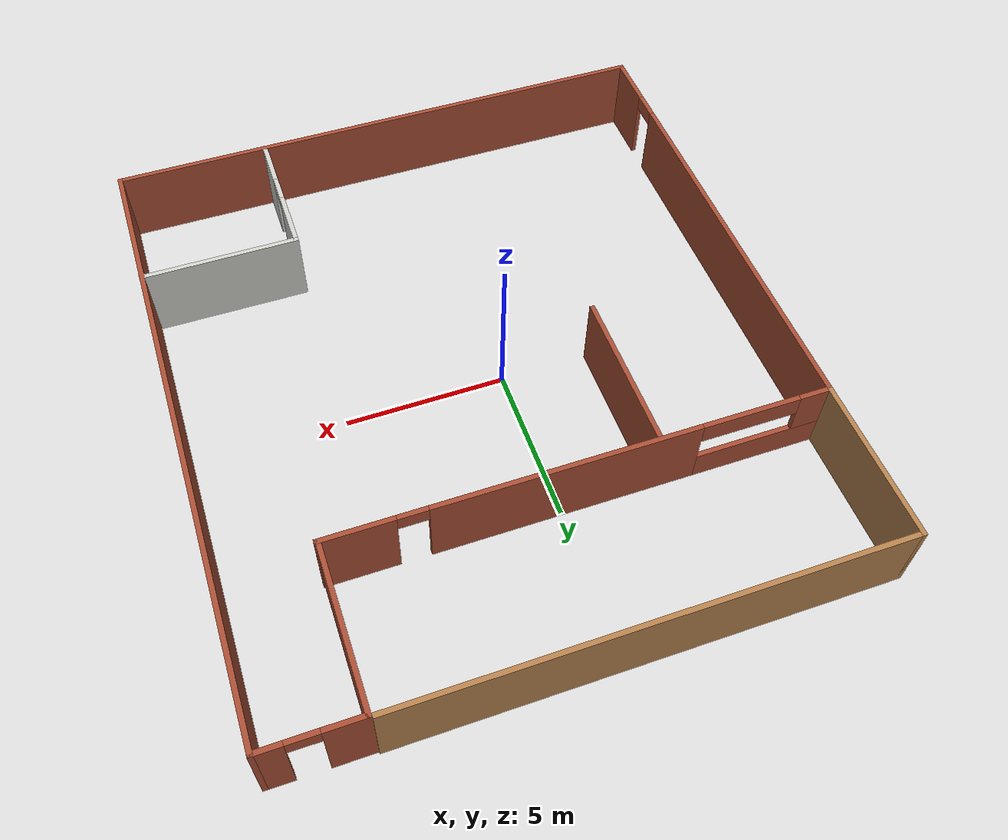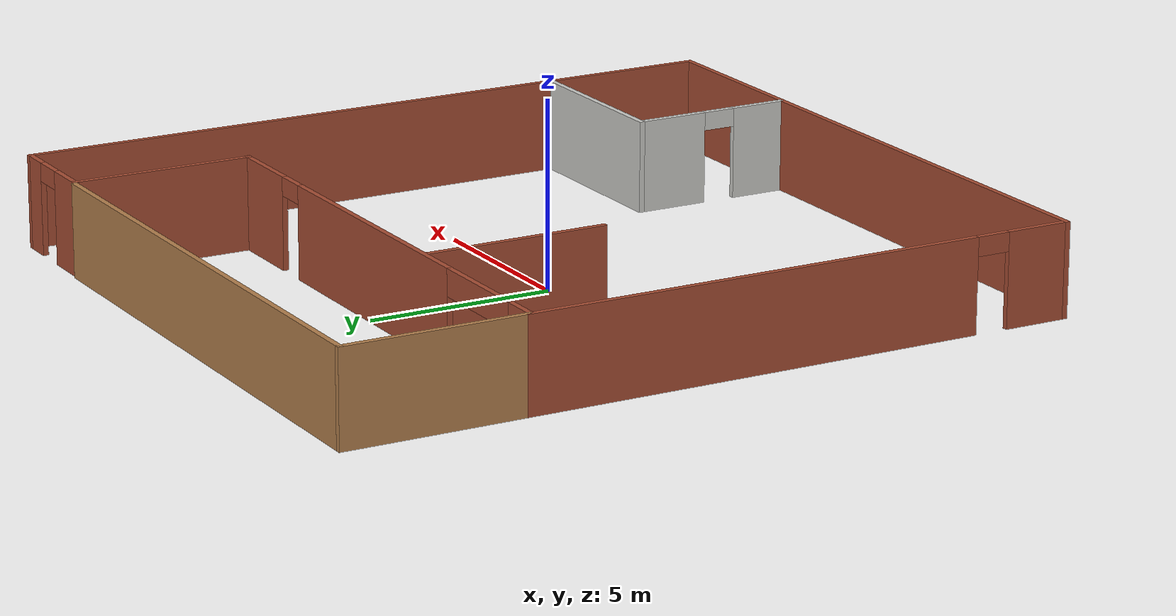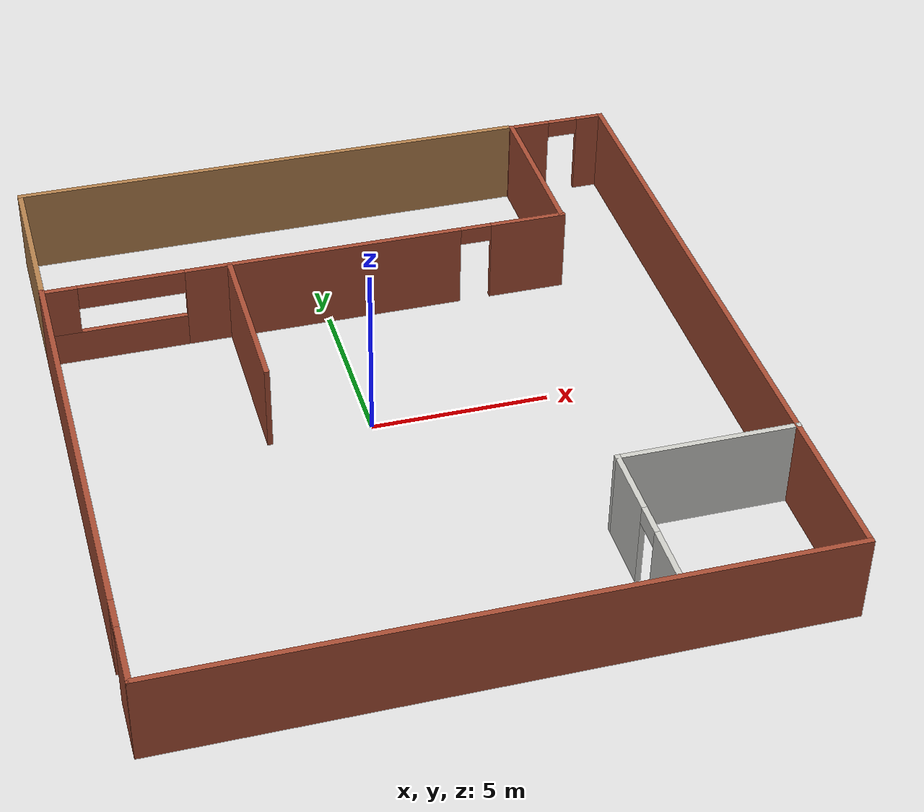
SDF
<?xml version='1.0'?>
<sdf version='1.7'>
  <model name='arlo_rest'>
    <pose>0.848214 -0.062833 0 0 -0 0</pose>
    <link name='Wall_13'>
      <pose>-1.37131 5.05 0 0 -0 3.14159</pose>
      <visual name='Wall_13_Visual_0'>
        <pose>-6.43231 0 1.25 0 -0 0</pose>
        <geometry>
          <box>
            <size>2.23539 0.15 2.5</size>
          </box>
        </geometry>
        <material>
          <script>
            <uri>file://media/materials/scripts/gazebo.material</uri>
            <name>Gazebo/Bricks</name>
          </script>
          <ambient>1 1 1 1</ambient>
        </material>
        <meta>
          <layer>0</layer>
        </meta>
      </visual>
      <collision name='Wall_13_Collision_0'>
        <geometry>
          <box>
            <size>2.23539 0.15 2.5</size>
          </box>
        </geometry>
        <pose>-6.43231 0 1.25 0 -0 0</pose>
      </collision>
      <visual name='Wall_13_Visual_1'>
        <pose>-0.411819 0 1.25 0 -0 0</pose>
        <geometry>
          <box>
            <size>8.00559 0.15 2.5</size>
          </box>
        </geometry>
        <material>
          <script>
            <uri>file://media/materials/scripts/gazebo.material</uri>
            <name>Gazebo/Bricks</name>
          </script>
          <ambient>1 1 1 1</ambient>
        </material>
        <meta>
          <layer>0</layer>
        </meta>
      </visual>
      <collision name='Wall_13_Collision_1'>
        <geometry>
          <box>
            <size>8.00559 0.15 2.5</size>
          </box>
        </geometry>
        <pose>-0.411819 0 1.25 0 -0 0</pose>
      </collision>
      <visual name='Wall_13_Visual_2'>
        <pose>5.57049 0 0.5 0 -0 0</pose>
        <geometry>
          <box>
            <size>3.95902 0.15 1</size>
          </box>
        </geometry>
        <material>
          <script>
            <uri>file://media/materials/scripts/gazebo.material</uri>
            <name>Gazebo/Bricks</name>
          </script>
          <ambient>1 1 1 1</ambient>
        </material>
        <meta>
          <layer>0</layer>
        </meta>
      </visual>
      <collision name='Wall_13_Collision_2'>
        <geometry>
          <box>
            <size>3.95902 0.15 1</size>
          </box>
        </geometry>
        <pose>5.57049 0 0.5 0 -0 0</pose>
      </collision>
      <visual name='Wall_13_Visual_3'>
        <pose>7.07049 0 1.75 0 -0 0</pose>
        <geometry>
          <box>
            <size>0.959024 0.15 1.5</size>
          </box>
        </geometry>
        <material>
          <script>
            <uri>file://media/materials/scripts/gazebo.material</uri>
            <name>Gazebo/Bricks</name>
          </script>
          <ambient>1 1 1 1</ambient>
        </material>
        <meta>
          <layer>0</layer>
        </meta>
      </visual>
      <collision name='Wall_13_Collision_3'>
        <geometry>
          <box>
            <size>0.959024 0.15 1.5</size>
          </box>
        </geometry>
        <pose>7.07049 0 1.75 0 -0 0</pose>
      </collision>
      <visual name='Wall_13_Visual_4'>
        <pose>5.09098 0 2.15 0 -0 0</pose>
        <geometry>
          <box>
            <size>3 0.15 0.7</size>
          </box>
        </geometry>
        <material>
          <script>
            <uri>file://media/materials/scripts/gazebo.material</uri>
            <name>Gazebo/Bricks</name>
          </script>
          <ambient>1 1 1 1</ambient>
        </material>
        <meta>
          <layer>0</layer>
        </meta>
      </visual>
      <collision name='Wall_13_Collision_4'>
        <geometry>
          <box>
            <size>3 0.15 0.7</size>
          </box>
        </geometry>
        <pose>5.09098 0 2.15 0 -0 0</pose>
      </collision>
      <visual name='Wall_13_Visual_5'>
        <pose>-4.86461 0 2.25 0 -0 0</pose>
        <geometry>
          <box>
            <size>0.9 0.15 0.5</size>
          </box>
        </geometry>
        <material>
          <script>
            <uri>file://media/materials/scripts/gazebo.material</uri>
            <name>Gazebo/Bricks</name>
          </script>
          <ambient>1 1 1 1</ambient>
        </material>
        <meta>
          <layer>0</layer>
        </meta>
      </visual>
      <collision name='Wall_13_Collision_5'>
        <geometry>
          <box>
            <size>0.9 0.15 0.5</size>
          </box>
        </geometry>
        <pose>-4.86461 0 2.25 0 -0 0</pose>
      </collision>
    </link>
    <link name='Wall_18'>
      <collision name='Wall_18_Collision'>
        <geometry>
          <box>
            <size>5 0.15 2.5</size>
          </box>
        </geometry>
        <pose>0 0 1.25 0 -0 0</pose>
      </collision>
      <visual name='Wall_18_Visual'>
        <pose>0 0 1.25 0 -0 0</pose>
        <geometry>
          <box>
            <size>5 0.15 2.5</size>
          </box>
        </geometry>
        <material>
          <script>
            <uri>file://media/materials/scripts/gazebo.material</uri>
            <name>Gazebo/Bricks</name>
          </script>
          <ambient>1 1 1 1</ambient>
        </material>
        <meta>
          <layer>0</layer>
        </meta>
      </visual>
      <pose>6.06851 7.475 0 0 -0 -1.5708</pose>
    </link>
    <link name='Wall_20'>
      <pose>-8.93149 -2.425 0 0 -0 1.5708</pose>
      <visual name='Wall_20_Visual_0'>
        <pose>-6.69242 0 1.25 0 -0 0</pose>
        <geometry>
          <box>
            <size>1.81516 0.15 2.5</size>
          </box>
        </geometry>
        <material>
          <script>
            <uri>file://media/materials/scripts/gazebo.material</uri>
            <name>Gazebo/Bricks</name>
          </script>
          <ambient>0.760784 0.662745 0.627451 1</ambient>
        </material>
        <meta>
          <layer>0</layer>
        </meta>
      </visual>
      <collision name='Wall_20_Collision_0'>
        <geometry>
          <box>
            <size>1.81516 0.15 2.5</size>
          </box>
        </geometry>
        <pose>-6.69242 0 1.25 0 -0 0</pose>
      </collision>
      <visual name='Wall_20_Visual_1'>
        <pose>1.35758 0 1.25 0 -0 0</pose>
        <geometry>
          <box>
            <size>12.4848 0.15 2.5</size>
          </box>
        </geometry>
        <material>
          <script>
            <uri>file://media/materials/scripts/gazebo.material</uri>
            <name>Gazebo/Bricks</name>
          </script>
          <ambient>0.760784 0.662745 0.627451 1</ambient>
        </material>
        <meta>
          <layer>0</layer>
        </meta>
      </visual>
      <collision name='Wall_20_Collision_1'>
        <geometry>
          <box>
            <size>12.4848 0.15 2.5</size>
          </box>
        </geometry>
        <pose>1.35758 0 1.25 0 -0 0</pose>
      </collision>
      <visual name='Wall_20_Visual_2'>
        <pose>-5.33484 0 2.25 0 -0 0</pose>
        <geometry>
          <box>
            <size>0.9 0.15 0.5</size>
          </box>
        </geometry>
        <material>
          <script>
            <uri>file://media/materials/scripts/gazebo.material</uri>
            <name>Gazebo/Bricks</name>
          </script>
          <ambient>0.760784 0.662745 0.627451 1</ambient>
        </material>
        <meta>
          <layer>0</layer>
        </meta>
      </visual>
      <collision name='Wall_20_Collision_2'>
        <geometry>
          <box>
            <size>0.9 0.15 0.5</size>
          </box>
        </geometry>
        <pose>-5.33484 0 2.25 0 -0 0</pose>
      </collision>
    </link>
    <link name='Wall_27'>
      <collision name='Wall_27_Collision'>
        <geometry>
          <box>
            <size>5 0.15 2.5</size>
          </box>
        </geometry>
        <pose>0 0 1.25 0 -0 0</pose>
      </collision>
      <visual name='Wall_27_Visual'>
        <pose>0 0 1.25 0 -0 0</pose>
        <geometry>
          <box>
            <size>5 0.15 2.5</size>
          </box>
        </geometry>
        <material>
          <script>
            <uri>file://media/materials/scripts/gazebo.material</uri>
            <name>Gazebo/Bricks</name>
          </script>
          <ambient>1 1 1 1</ambient>
        </material>
        <meta>
          <layer>0</layer>
        </meta>
      </visual>
      <pose>-3.68099 2.53069 0 0 -0 1.5708</pose>
    </link>
    <link name='Wall_30'>
      <collision name='Wall_30_Collision'>
        <geometry>
          <box>
            <size>5 0.15 2.5</size>
          </box>
        </geometry>
        <pose>0 0 1.25 0 -0 0</pose>
      </collision>
      <visual name='Wall_30_Visual'>
        <pose>0 0 1.25 0 -0 0</pose>
        <geometry>
          <box>
            <size>5 0.15 2.5</size>
          </box>
        </geometry>
        <material>
          <script>
            <uri>file://media/materials/scripts/gazebo.material</uri>
            <name>Gazebo/CeilingTiled</name>
          </script>
          <ambient>1 1 1 1</ambient>
        </material>
        <meta>
          <layer>0</layer>
        </meta>
      </visual>
      <pose>6.50649 -5.52543 0 0 -0 3.14159</pose>
    </link>
    <link name='Wall_31'>
      <pose>4.08149 -7.70043 0 0 -0 -1.5708</pose>
      <visual name='Wall_31_Visual_0'>
        <pose>-1.24049 0 1.25 0 -0 0</pose>
        <geometry>
          <box>
            <size>2.01902 0.15 2.5</size>
          </box>
        </geometry>
        <material>
          <script>
            <uri>file://media/materials/scripts/gazebo.material</uri>
            <name>Gazebo/CeilingTiled</name>
          </script>
          <ambient>1 1 1 1</ambient>
        </material>
        <meta>
          <layer>0</layer>
        </meta>
      </visual>
      <collision name='Wall_31_Collision_0'>
        <geometry>
          <box>
            <size>2.01902 0.15 2.5</size>
          </box>
        </geometry>
        <pose>-1.24049 0 1.25 0 -0 0</pose>
      </collision>
      <visual name='Wall_31_Visual_1'>
        <pose>1.45951 0 1.25 0 -0 0</pose>
        <geometry>
          <box>
            <size>1.58098 0.15 2.5</size>
          </box>
        </geometry>
        <material>
          <script>
            <uri>file://media/materials/scripts/gazebo.material</uri>
            <name>Gazebo/CeilingTiled</name>
          </script>
          <ambient>1 1 1 1</ambient>
        </material>
        <meta>
          <layer>0</layer>
        </meta>
      </visual>
      <collision name='Wall_31_Collision_1'>
        <geometry>
          <box>
            <size>1.58098 0.15 2.5</size>
          </box>
        </geometry>
        <pose>1.45951 0 1.25 0 -0 0</pose>
      </collision>
      <visual name='Wall_31_Visual_2'>
        <pose>0.219018 0 2.25 0 -0 0</pose>
        <geometry>
          <box>
            <size>0.9 0.15 0.5</size>
          </box>
        </geometry>
        <material>
          <script>
            <uri>file://media/materials/scripts/gazebo.material</uri>
            <name>Gazebo/CeilingTiled</name>
          </script>
          <ambient>1 1 1 1</ambient>
        </material>
        <meta>
          <layer>0</layer>
        </meta>
      </visual>
      <collision name='Wall_31_Collision_2'>
        <geometry>
          <box>
            <size>0.9 0.15 0.5</size>
          </box>
        </geometry>
        <pose>0.219018 0 2.25 0 -0 0</pose>
      </collision>
    </link>
    <link name='Wall_36'>
      <collision name='Wall_36_Collision'>
        <geometry>
          <box>
            <size>5 0.15 2.5</size>
          </box>
        </geometry>
        <pose>0 0 1.25 0 -0 0</pose>
      </collision>
      <visual name='Wall_36_Visual'>
        <pose>0 0 1.25 0 -0 0</pose>
        <geometry>
          <box>
            <size>5 0.15 2.5</size>
          </box>
        </geometry>
        <material>
          <script>
            <uri>file://media/materials/scripts/gazebo.material</uri>
            <name>Gazebo/Wood</name>
          </script>
          <ambient>1 1 1 1</ambient>
        </material>
        <meta>
          <layer>0</layer>
        </meta>
      </visual>
      <pose>-8.93149 7.525 0 0 -0 1.5708</pose>
    </link>
    <link name='Wall_37'>
      <collision name='Wall_37_Collision'>
        <geometry>
          <box>
            <size>15 0.15 2.5</size>
          </box>
        </geometry>
        <pose>0 0 1.25 0 -0 0</pose>
      </collision>
      <visual name='Wall_37_Visual'>
        <pose>0 0 1.25 0 -0 0</pose>
        <geometry>
          <box>
            <size>15 0.15 2.5</size>
          </box>
        </geometry>
        <material>
          <script>
            <uri>file://media/materials/scripts/gazebo.material</uri>
            <name>Gazebo/Wood</name>
          </script>
          <ambient>1 1 1 1</ambient>
        </material>
        <meta>
          <layer>0</layer>
        </meta>
      </visual>
      <pose>-1.50649 9.95 0 0 -0 0</pose>
    </link>
    <link name='Wall_5'>
      <collision name='Wall_5_Collision'>
        <geometry>
          <box>
            <size>20 0.15 2.5</size>
          </box>
        </geometry>
        <pose>0 0 1.25 0 -0 0</pose>
      </collision>
      <visual name='Wall_5_Visual'>
        <pose>0 0 1.25 0 -0 0</pose>
        <geometry>
          <box>
            <size>20 0.15 2.5</size>
          </box>
        </geometry>
        <material>
          <script>
            <uri>file://media/materials/scripts/gazebo.material</uri>
            <name>Gazebo/Bricks</name>
          </script>
          <ambient>1 1 1 1</ambient>
        </material>
        <meta>
          <layer>0</layer>
        </meta>
      </visual>
      <pose>8.91851 -0.025 0 0 -0 -1.5708</pose>
    </link>
    <link name='Wall_7'>
      <collision name='Wall_7_Collision'>
        <geometry>
          <box>
            <size>18 0.15 2.5</size>
          </box>
        </geometry>
        <pose>0 0 1.25 0 -0 0</pose>
      </collision>
      <visual name='Wall_7_Visual'>
        <pose>0 0 1.25 0 -0 0</pose>
        <geometry>
          <box>
            <size>18 0.15 2.5</size>
          </box>
        </geometry>
        <material>
          <script>
            <uri>file://media/materials/scripts/gazebo.material</uri>
            <name>Gazebo/Bricks</name>
          </script>
          <ambient>0.760784 0.662745 0.627451 1</ambient>
        </material>
        <meta>
          <layer>0</layer>
        </meta>
      </visual>
      <pose>-0.006489 -9.95 0 0 -0 0</pose>
    </link>
    <link name='Wall_9'>
      <pose>7.49351 9.9 0 0 -0 3.14159</pose>
      <visual name='Wall_9_Visual_0'>
        <pose>-1.06803 0 1.25 0 -0 0</pose>
        <geometry>
          <box>
            <size>0.863935 0.15 2.5</size>
          </box>
        </geometry>
        <material>
          <script>
            <uri>file://media/materials/scripts/gazebo.material</uri>
            <name>Gazebo/Bricks</name>
          </script>
          <ambient>1 1 1 1</ambient>
        </material>
        <meta>
          <layer>0</layer>
        </meta>
      </visual>
      <collision name='Wall_9_Collision_0'>
        <geometry>
          <box>
            <size>0.863935 0.15 2.5</size>
          </box>
        </geometry>
        <pose>-1.06803 0 1.25 0 -0 0</pose>
      </collision>
      <visual name='Wall_9_Visual_1'>
        <pose>0.881968 0 1.25 0 -0 0</pose>
        <geometry>
          <box>
            <size>1.23606 0.15 2.5</size>
          </box>
        </geometry>
        <material>
          <script>
            <uri>file://media/materials/scripts/gazebo.material</uri>
            <name>Gazebo/Bricks</name>
          </script>
          <ambient>1 1 1 1</ambient>
        </material>
        <meta>
          <layer>0</layer>
        </meta>
      </visual>
      <collision name='Wall_9_Collision_1'>
        <geometry>
          <box>
            <size>1.23606 0.15 2.5</size>
          </box>
        </geometry>
        <pose>0.881968 0 1.25 0 -0 0</pose>
      </collision>
      <visual name='Wall_9_Visual_2'>
        <pose>-0.186065 0 2.25 0 -0 0</pose>
        <geometry>
          <box>
            <size>0.9 0.15 0.5</size>
          </box>
        </geometry>
        <material>
          <script>
            <uri>file://media/materials/scripts/gazebo.material</uri>
            <name>Gazebo/Bricks</name>
          </script>
          <ambient>1 1 1 1</ambient>
        </material>
        <meta>
          <layer>0</layer>
        </meta>
      </visual>
      <collision name='Wall_9_Collision_2'>
        <geometry>
          <box>
            <size>0.9 0.15 0.5</size>
          </box>
        </geometry>
        <pose>-0.186065 0 2.25 0 -0 0</pose>
      </collision>
    </link>
    <static>1</static>
  </model>
</sdf>
